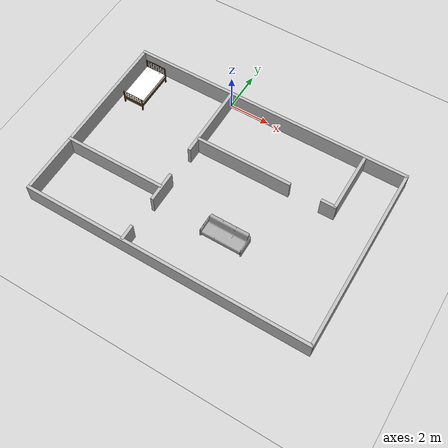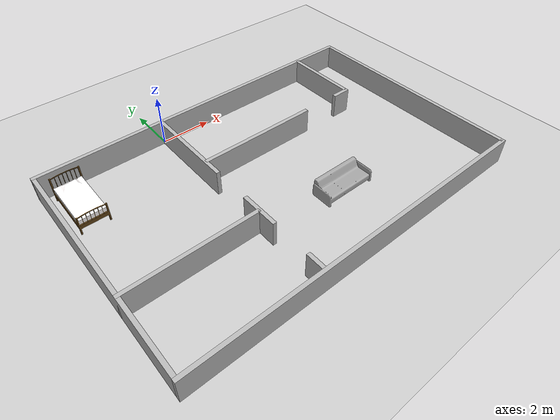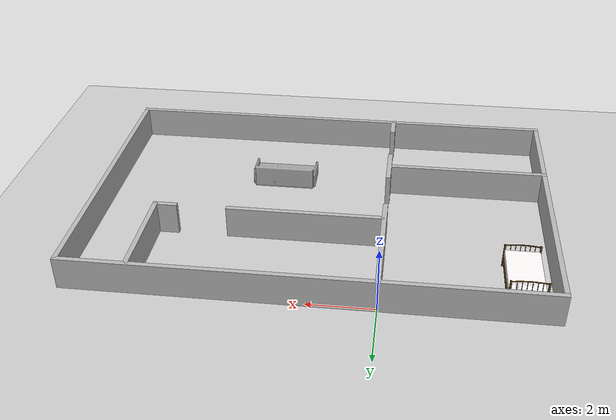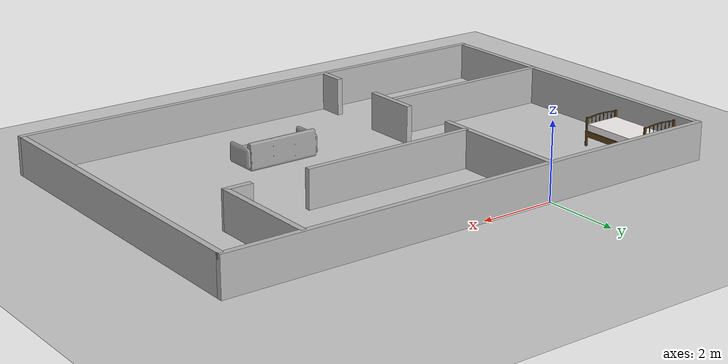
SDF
<sdf version="1.4">
 <world name="default">
  <include><uri>model://ground_plane</uri></include>
  <include><uri>model://sun</uri></include>
  <include><uri>model://sofa</uri><name>sofa</name><pose>3.42 -6.24 0 0 0 -1.57</pose></include>
  <include><uri>model://bed</uri><name>bed</name><pose>-4.55 -2.42 0 0 0 0</pose></include>
  <model name="room">
   <link name="Wall_1">
    <collision name="Wall_1_Collision"><geometry><box><size>14 0.15 1</size></box></geometry></collision>
    <visual name="Wall_1_Visual"><geometry><box><size>14 0.15 1</size></box></geometry></visual>
    <pose>2 -9 0.5 0 -0 0</pose>
   </link>
   <link name="Wall_2">
    <collision name="Wall_2_Collision"><geometry><box><size>14 0.15 1</size></box></geometry></collision>
    <visual name="Wall_2_Visual"><geometry><box><size>14 0.15 1</size></box></geometry></visual>
    <pose>2 0 0.5 0 -0 0</pose>
   </link>
   <link name="Wall_3">
    <collision name="Wall_3_Collision"><geometry><box><size>5 0.15 1</size></box></geometry></collision>
    <visual name="Wall_3_Visual"><geometry><box><size>5 0.15 1</size></box></geometry></visual>
    <pose>-2.5 -6 0.5 0 -0 0</pose>
   </link>
   <link name="Wall_4">
    <collision name="Wall_4_Collision"><geometry><box><size>4.75 0.15 1</size></box></geometry></collision>
    <visual name="Wall_4_Visual"><geometry><box><size>4.75 0.15 1</size></box></geometry></visual>
    <pose>2.375 -3 0.5 0 -0 0</pose>
   </link>
   <link name="Wall_5">
    <collision name="Wall_5_Collision"><geometry><box><size>0.75 0.15 1</size></box></geometry></collision>
    <visual name="Wall_5_Visual"><geometry><box><size>0.75 0.15 1</size></box></geometry></visual>
    <pose>6.625 -3 0.5 0 -0 0</pose>
   </link>
   <link name="p_1">
    <collision name="p_1_Collision"><geometry><box><size>0.15 8.85 1</size></box></geometry></collision>
    <visual name="p_1_Visual"><geometry><box><size>0.15 8.85 1</size></box></geometry></visual>
    <pose>-4.925 -4.5 0.5 0 -0 0</pose>
   </link>
   <link name="p_2">
    <collision name="p_2_Collision"><geometry><box><size>0.15 3.75 1</size></box></geometry></collision>
    <visual name="p_2_Visual"><geometry><box><size>0.15 3.75 1</size></box></geometry></visual>
    <pose>0 -1.875 0.5 0 -0 0</pose>
   </link>
   <link name="p_3">
    <collision name="p_3_Collision"><geometry><box><size>0.15 1.5 1</size></box></geometry></collision>
    <visual name="p_3_Visual"><geometry><box><size>0.15 1.5 1</size></box></geometry></visual>
    <pose>0 -6 0.5 0 -0 0</pose>
   </link>
   <link name="p_4">
    <collision name="p_4_Collision"><geometry><box><size>0.15 0.75 1</size></box></geometry></collision>
    <visual name="p_4_Visual"><geometry><box><size>0.15 0.75 1</size></box></geometry></visual>
    <pose>0 -8.625 0.5 0 -0 0</pose>
   </link>
   <link name="p_5">
    <collision name="p_5_Collision"><geometry><box><size>0.15 3 1</size></box></geometry></collision>
    <visual name="p_5_Visual"><geometry><box><size>0.15 3 1</size></box></geometry></visual>
    <pose>6.925 -1.5 0.5 0 -0 0</pose>
   </link>
   <link name="p_6">
    <collision name="p_6_Collision"><geometry><box><size>0.15 9 1</size></box></geometry></collision>
    <visual name="p_6_Visual"><geometry><box><size>0.15 9 1</size></box></geometry></visual>
    <pose>8.925 -4.5 0.5 0 -0 0</pose>
   </link>
   <static>1</static>
  </model>
 </world>
</sdf>

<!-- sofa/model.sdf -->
<sdf version="1.5">
  <model name="sofa">
    <link name="link">
      <pose>0 0 0 0 0 0</pose>
      <gravity>false</gravity>
      <inertial>
	<mass>10</mass>
      </inertial>
      <visual name="visual">
	<geometry>
	  <mesh>
	    <uri>model://sofa/meshes/sofa.dae</uri>
	  </mesh>
	</geometry>
      </visual>
      <collision name="sofa">
	<geometry>
	  <mesh>
	    <uri>model://sofa/meshes/sofa.dae</uri>
	  </mesh>
	</geometry>
      </collision>
    </link>
    <static>1</static>
  </model>
</sdf>

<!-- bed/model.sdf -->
<sdf version="1.5">
  <model name="bed">
    <link name="link">
      <pose>0 0 0 0 0 0</pose>
      <gravity>false</gravity>
      <inertial>
	<mass>10</mass>
      </inertial>
      <visual name="visual">
	<geometry>
	  <mesh>
	    <uri>model://bed/meshes/bed.dae</uri>
            <scale>1 1 1</scale>
	  </mesh>
	</geometry>
      </visual>
      <collision name="bed">
	<geometry>
	  <mesh>
	    <uri>model://bed/meshes/bed.dae</uri>
            <scale>1 1 1</scale>
	  </mesh>
	</geometry>
      </collision>
    </link>
    <static>1</static>
  </model>
</sdf>
